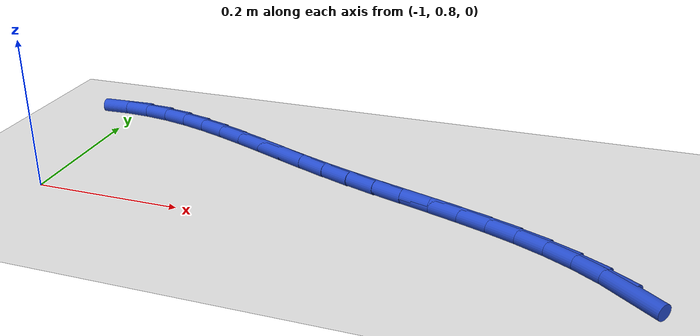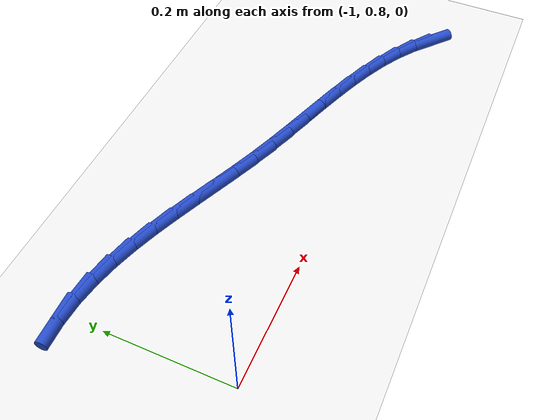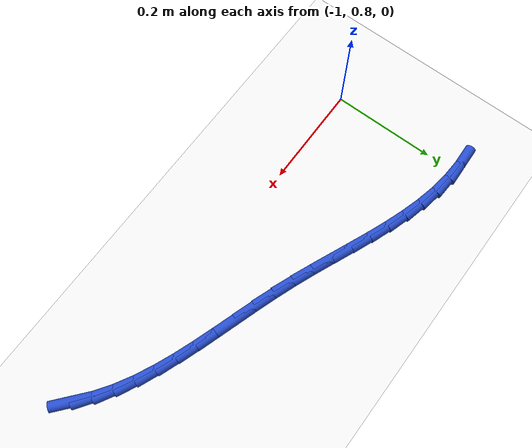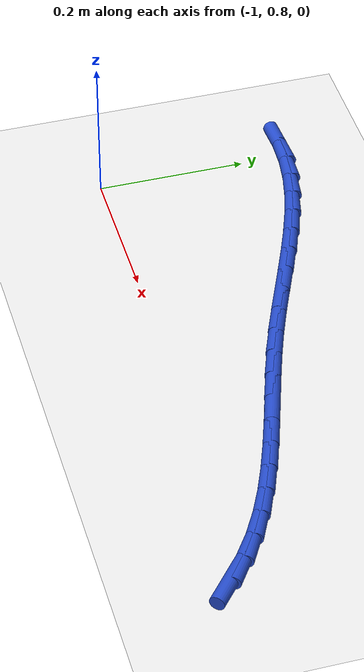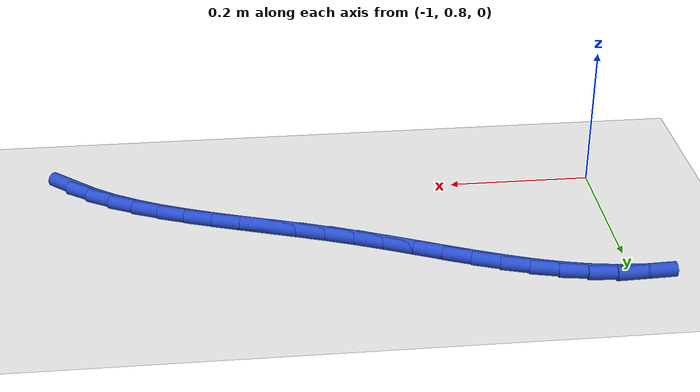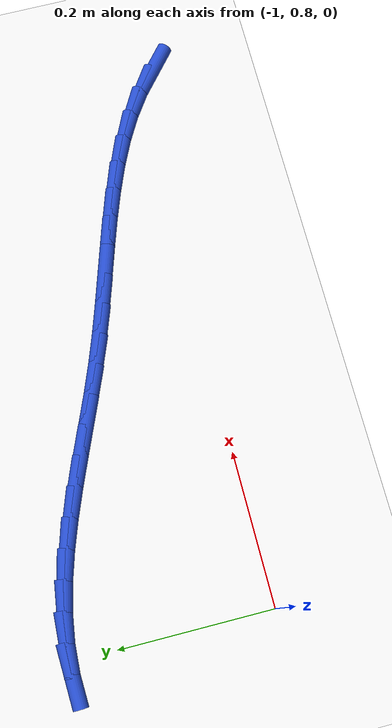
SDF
<sdf version="1.6">
 <world name="default">
  <model name="ground_plane">
   <static>1</static>
   <link name="link">
    <collision name="collision">
     <geometry><plane><normal>0 0 1</normal><size>100 100</size></plane></geometry>
     <surface><friction><ode><mu>100</mu><mu2>50</mu2></ode></friction></surface>
    </collision>
    <visual name="visual">
     <cast_shadows>0</cast_shadows>
     <geometry><plane><normal>0 0 1</normal><size>100 100</size></plane></geometry>
     <material>
      <script><uri>file://media/materials/scripts/gazebo.material</uri><name>Gazebo/WhiteGlow</name></script>
     </material>
    </visual>
   </link>
  </model>
  <model name="line">
   <link name="link_21">
    <pose>-0.25847729133602515 0.7688997647421925 0.01 0 1.57 -0.7033636517493684</pose>
    <collision name="collision">
     <geometry><cylinder><radius>0.01</radius><length>0.08</length></cylinder></geometry>
    </collision>
    <visual name="visual">
     <material>
      <script><name>Gazebo/Blue</name><uri>file://media/materials/scripts/gazebo.material</uri></script>
     </material>
     <geometry><cylinder><radius>0.01</radius><length>0.08</length></cylinder></geometry>
    </visual>
   </link>
   <link name="link_22">
    <pose>-0.286311918129234 0.7925050517288851 0.01 0 1.57 -0.6024252560384049</pose>
    <collision name="collision">
     <geometry><cylinder><radius>0.01</radius><length>0.08</length></cylinder></geometry>
    </collision>
    <visual name="visual">
     <material>
      <script><name>Gazebo/Blue</name><uri>file://media/materials/scripts/gazebo.material</uri></script>
     </material>
     <geometry><cylinder><radius>0.01</radius><length>0.08</length></cylinder></geometry>
    </visual>
   </link>
   <link name="link_23">
    <pose>-0.3165501497843575 0.8132999777739712 0.01 0 1.57 -0.5168796590764587</pose>
    <collision name="collision">
     <geometry><cylinder><radius>0.01</radius><length>0.08</length></cylinder></geometry>
    </collision>
    <visual name="visual">
     <material>
      <script><name>Gazebo/Blue</name><uri>file://media/materials/scripts/gazebo.material</uri></script>
     </material>
     <geometry><cylinder><radius>0.01</radius><length>0.08</length></cylinder></geometry>
    </visual>
   </link>
   <link name="link_24">
    <pose>-0.3488970390477859 0.8316867884796831 0.01 0 1.57 -0.44754463701837927</pose>
    <collision name="collision">
     <geometry><cylinder><radius>0.01</radius><length>0.08</length></cylinder></geometry>
    </collision>
    <visual name="visual">
     <material>
      <script><name>Gazebo/Blue</name><uri>file://media/materials/scripts/gazebo.material</uri></script>
     </material>
     <geometry><cylinder><radius>0.01</radius><length>0.08</length></cylinder></geometry>
    </visual>
   </link>
   <link name="link_25">
    <pose>-0.38304860594272677 0.8480805768950984 0.01 0 1.57 -0.39385267290261916</pose>
    <collision name="collision">
     <geometry><cylinder><radius>0.01</radius><length>0.08</length></cylinder></geometry>
    </collision>
    <visual name="visual">
     <material>
      <script><name>Gazebo/Blue</name><uri>file://media/materials/scripts/gazebo.material</uri></script>
     </material>
     <geometry><cylinder><radius>0.01</radius><length>0.08</length></cylinder></geometry>
    </visual>
   </link>
   <link name="link_26">
    <pose>-0.41870087049238797 0.8628964360692951 0.01 0 1.57 -0.35483097605906816</pose>
    <collision name="collision">
     <geometry><cylinder><radius>0.01</radius><length>0.08</length></cylinder></geometry>
    </collision>
    <visual name="visual">
     <material>
      <script><name>Gazebo/Blue</name><uri>file://media/materials/scripts/gazebo.material</uri></script>
     </material>
     <geometry><cylinder><radius>0.01</radius><length>0.08</length></cylinder></geometry>
    </visual>
   </link>
   <link name="link_27">
    <pose>-0.4555498527199769 0.8765494590513515 0.01 0 1.57 -0.3294735134559211</pose>
    <collision name="collision">
     <geometry><cylinder><radius>0.01</radius><length>0.08</length></cylinder></geometry>
    </collision>
    <visual name="visual">
     <material>
      <script><name>Gazebo/Blue</name><uri>file://media/materials/scripts/gazebo.material</uri></script>
     </material>
     <geometry><cylinder><radius>0.01</radius><length>0.08</length></cylinder></geometry>
    </visual>
   </link>
   <link name="link_28">
    <pose>-0.493291572648702 0.8894547388903461 0.01 0 1.57 -0.31694838914633827</pose>
    <collision name="collision">
     <geometry><cylinder><radius>0.01</radius><length>0.08</length></cylinder></geometry>
    </collision>
    <visual name="visual">
     <material>
      <script><name>Gazebo/Blue</name><uri>file://media/materials/scripts/gazebo.material</uri></script>
     </material>
     <geometry><cylinder><radius>0.01</radius><length>0.08</length></cylinder></geometry>
    </visual>
   </link>
   <link name="link_29">
    <pose>-0.5316220503017703 0.9020273686353564 0.01 0 1.57 -0.3166919745367716</pose>
    <collision name="collision">
     <geometry><cylinder><radius>0.01</radius><length>0.08</length></cylinder></geometry>
    </collision>
    <visual name="visual">
     <material>
      <script><name>Gazebo/Blue</name><uri>file://media/materials/scripts/gazebo.material</uri></script>
     </material>
     <geometry><cylinder><radius>0.01</radius><length>0.08</length></cylinder></geometry>
    </visual>
   </link>
   <link name="link_30">
    <pose>-0.5702373057023898 0.9146824413354606 0.01 0 1.57 -0.32843393407724975</pose>
    <collision name="collision">
     <geometry><cylinder><radius>0.01</radius><length>0.08</length></cylinder></geometry>
    </collision>
    <visual name="visual">
     <material>
      <script><name>Gazebo/Blue</name><uri>file://media/materials/scripts/gazebo.material</uri></script>
     </material>
     <geometry><cylinder><radius>0.01</radius><length>0.08</length></cylinder></geometry>
    </visual>
   </link>
   <link name="link_31">
    <pose>-0.6088333588737685 0.927835050039737 0.01 0 1.57 -0.35215004799600463</pose>
    <collision name="collision">
     <geometry><cylinder><radius>0.01</radius><length>0.08</length></cylinder></geometry>
    </collision>
    <visual name="visual">
     <material>
      <script><name>Gazebo/Blue</name><uri>file://media/materials/scripts/gazebo.material</uri></script>
     </material>
     <geometry><cylinder><radius>0.01</radius><length>0.08</length></cylinder></geometry>
    </visual>
   </link>
   <link name="link_32">
    <pose>-0.6471066775936392 0.9418992295531419 0.01 0 1.57 -0.38117288325636806</pose>
    <collision name="collision">
     <geometry><cylinder><radius>0.01</radius><length>0.08</length></cylinder></geometry>
    </collision>
    <visual name="visual">
     <material>
      <script><name>Gazebo/Blue</name><uri>file://media/materials/scripts/gazebo.material</uri></script>
     </material>
     <geometry><cylinder><radius>0.01</radius><length>0.08</length></cylinder></geometry>
    </visual>
   </link>
   <link name="link_33">
    <pose>-0.6848629285408614 0.9570309288578076 0.01 0 1.57 -0.39984912702733794</pose>
    <collision name="collision">
     <geometry><cylinder><radius>0.01</radius><length>0.08</length></cylinder></geometry>
    </collision>
    <visual name="visual">
     <material>
      <script><name>Gazebo/Blue</name><uri>file://media/materials/scripts/gazebo.material</uri></script>
     </material>
     <geometry><cylinder><radius>0.01</radius><length>0.08</length></cylinder></geometry>
    </visual>
   </link>
   <link name="link_34">
    <pose>-0.7221588296527172 0.9727927505749273 0.01 0 1.57 -0.4059308810750633</pose>
    <collision name="collision">
     <geometry><cylinder><radius>0.01</radius><length>0.08</length></cylinder></geometry>
    </collision>
    <visual name="visual">
     <material>
      <script><name>Gazebo/Blue</name><uri>file://media/materials/scripts/gazebo.material</uri></script>
     </material>
     <geometry><cylinder><radius>0.01</radius><length>0.08</length></cylinder></geometry>
    </visual>
   </link>
   <link name="link_35">
    <pose>-0.759086247323077 0.9886642258089833 0.01 0 1.57 -0.39918841952731327</pose>
    <collision name="collision">
     <geometry><cylinder><radius>0.01</radius><length>0.08</length></cylinder></geometry>
    </collision>
    <visual name="visual">
     <material>
      <script><name>Gazebo/Blue</name><uri>file://media/materials/scripts/gazebo.material</uri></script>
     </material>
     <geometry><cylinder><radius>0.01</radius><length>0.08</length></cylinder></geometry>
    </visual>
   </link>
   <link name="link_36">
    <pose>-0.7957370479458116 1.004124885664458 0.01 0 1.57 -0.3791571022842836</pose>
    <collision name="collision">
     <geometry><cylinder><radius>0.01</radius><length>0.08</length></cylinder></geometry>
    </collision>
    <visual name="visual">
     <material>
      <script><name>Gazebo/Blue</name><uri>file://media/materials/scripts/gazebo.material</uri></script>
     </material>
     <geometry><cylinder><radius>0.01</radius><length>0.08</length></cylinder></geometry>
    </visual>
   </link>
   <link name="link_37">
    <pose>-0.8322030979147917 1.0186542612458342 0.01 0 1.57 -0.3451486479870833</pose>
    <collision name="collision">
     <geometry><cylinder><radius>0.01</radius><length>0.08</length></cylinder></geometry>
    </collision>
    <visual name="visual">
     <material>
      <script><name>Gazebo/Blue</name><uri>file://media/materials/scripts/gazebo.material</uri></script>
     </material>
     <geometry><cylinder><radius>0.01</radius><length>0.08</length></cylinder></geometry>
    </visual>
   </link>
   <link name="link_38">
    <pose>-0.8685762636238878 1.0317318836575942 0.01 0 1.57 -0.29633679619192715</pose>
    <collision name="collision">
     <geometry><cylinder><radius>0.01</radius><length>0.08</length></cylinder></geometry>
    </collision>
    <visual name="visual">
     <material>
      <script><name>Gazebo/Blue</name><uri>file://media/materials/scripts/gazebo.material</uri></script>
     </material>
     <geometry><cylinder><radius>0.01</radius><length>0.08</length></cylinder></geometry>
    </visual>
   </link>
   <link name="link_39">
    <pose>-0.9049484114669711 1.04283728400422 0.01 0 1.57 -0.23195274142129868</pose>
    <collision name="collision">
     <geometry><cylinder><radius>0.01</radius><length>0.08</length></cylinder></geometry>
    </collision>
    <visual name="visual">
     <material>
      <script><name>Gazebo/Blue</name><uri>file://media/materials/scripts/gazebo.material</uri></script>
     </material>
     <geometry><cylinder><radius>0.01</radius><length>0.08</length></cylinder></geometry>
    </visual>
   </link>
   <link name="link_40">
    <pose>-0.941411407837912 1.051449993390195 0.01 0 1.57 -0.15162946516359266</pose>
    <collision name="collision">
     <geometry><cylinder><radius>0.01</radius><length>0.08</length></cylinder></geometry>
    </collision>
    <visual name="visual">
     <material>
      <script><name>Gazebo/Blue</name><uri>file://media/materials/scripts/gazebo.material</uri></script>
     </material>
     <geometry><cylinder><radius>0.01</radius><length>0.08</length></cylinder></geometry>
    </visual>
   </link>
   <link name="link_41">
    <pose>-0.9780571191305808 1.0570495429200006 0.01 0 1.57 -0.05655572588308514</pose>
    <collision name="collision">
     <geometry><cylinder><radius>0.01</radius><length>0.08</length></cylinder></geometry>
    </collision>
    <visual name="visual">
     <material>
      <script><name>Gazebo/Blue</name><uri>file://media/materials/scripts/gazebo.material</uri></script>
     </material>
     <geometry><cylinder><radius>0.01</radius><length>0.08</length></cylinder></geometry>
    </visual>
   </link>
   <link name="link_42">
    <pose>-1.0149739178853434 1.0591396281603196 0.01 0 1.57 0.038547909194739195</pose>
    <collision name="collision">
     <geometry><cylinder><radius>0.01</radius><length>0.08</length></cylinder></geometry>
    </collision>
    <visual name="visual">
     <material>
      <script><name>Gazebo/Blue</name><uri>file://media/materials/scripts/gazebo.material</uri></script>
     </material>
     <geometry><cylinder><radius>0.01</radius><length>0.08</length></cylinder></geometry>
    </visual>
   </link>
  </model>
 </world>
</sdf>
